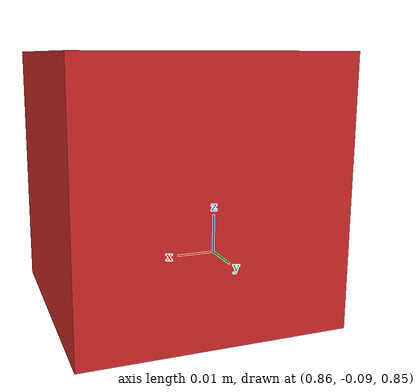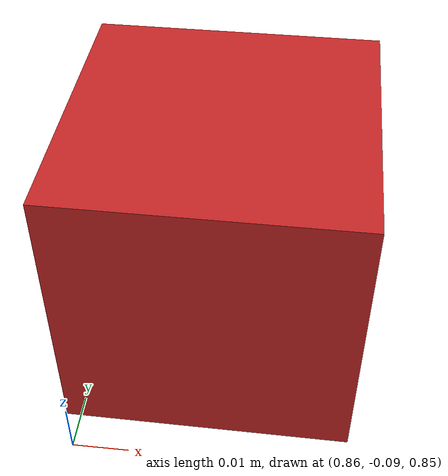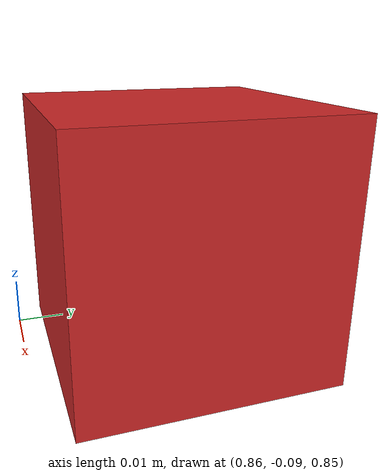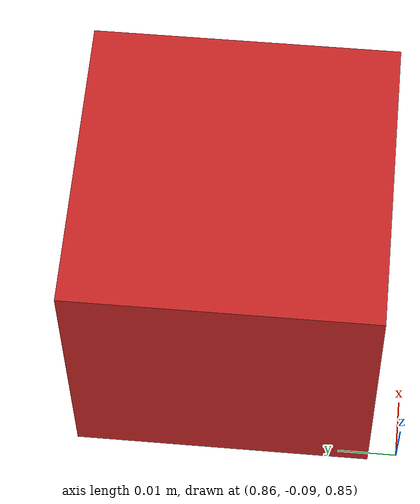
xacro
<?xml version="1.0"?>
<robot name="box" xmlns:xacro="http://www.ros.org/wiki/xacro">
  <!-- Import Rviz colors -->
  <xacro:include filename="$(find yumi_description)/urdf/materials.xacro" />
  <!-- Import utilities -->
  <xacro:include filename="$(find yumi_description)/urdf/utilities.xacro" />
  <xacro:include filename="$(find yumi_description)/urdf/box.xacro"/>

  <!-- Fix to world just for testing -->
  <link name="world"/>

  <xacro:yumi_box name="box" parent="world">
    <origin xyz="0.883 -0.06 0.877" rpy="0 0 0" />
  </xacro:yumi_box>

</robot>

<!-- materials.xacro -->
<robot>

  <material name="Black">
    <color rgba="0.0 0.0 0.0 1.0"/>
  </material>

  <material name="Blue">
    <color rgba="0.0 0.0 0.8 1.0"/>
  </material>

  <material name="Green">
    <color rgba="0.0 0.8 0.0 1.0"/>
  </material>

  <material name="Grey">
    <color rgba="0.5 0.5 0.5 1.0"/>
  </material>

  <material name="Light_Grey">
    <color rgba="0.8 0.8 0.8 1.0"/>
  </material>

  <material name="Ivory">
    <color rgba="1.0 1.0 0.94 1.0"/>
  </material>

  <material name="Orange">
    <color rgba="${255/255} ${108/255} ${10/255} 1.0"/>
  </material>

  <material name="Brown">
    <color rgba="${222/255} ${207/255} ${195/255} 1.0"/>
  </material>

  <material name="Red">
    <color rgba="0.8 0.0 0.0 1.0"/>
  </material>

  <material name="White">
    <color rgba="1.0 1.0 1.0 1.0"/>
  </material>

  <material name="Drexel_Blue">
    <color rgba="0.027 0.161 0.302 1.0"/>
  </material>

  <material name="SeeThrough">
    <color rgba="0 0 0 0"/>
  </material>

  <material name="Transparent">
    <color rgba="1.0 1.0 1.0 0.5"/>
  </material>

</robot>

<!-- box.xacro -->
<robot name="yumi" xmlns:xacro="http://www.ros.org/wiki/xacro">

  <xacro:property name="box_link" value="0.05" />

  <xacro:macro name="yumi_box" params="parent name *origin">
   <joint name="box_joint" type="floating">
    <insert_block name="origin"/>
    <parent link="${parent}"/>
    <child link="${name}_base"/>
  </joint>

  <!-- Box -->
  <link name="${name}_base">
    <collision>
      <origin xyz="0 0 0" rpy="0 0 0"/>
      <geometry>
        <box size="${box_link} ${box_link} ${box_link}"/>
      </geometry>
    </collision>

    <visual>
      <origin xyz="0 0 0" rpy="0 0 0"/>
      <geometry>
       <box size="${box_link} ${box_link} ${box_link}"/>
     </geometry>
     <material name="red"/>
   </visual>

   <inertial>
    <mass value="1e-5" />
    <origin xyz="0 0 0" rpy="0 0 0"/>
    <inertia ixx="1e-6" ixy="0" ixz="0" iyy="1e-6" iyz="0" izz="1e-6" />
  </inertial>
</link>
 <gazebo reference="box_base">
    <mu1>0.5</mu1>
    <mu2>0.5</mu2>
    <material>Gazebo/red</material>
  </gazebo>
</xacro:macro>

</robot>
